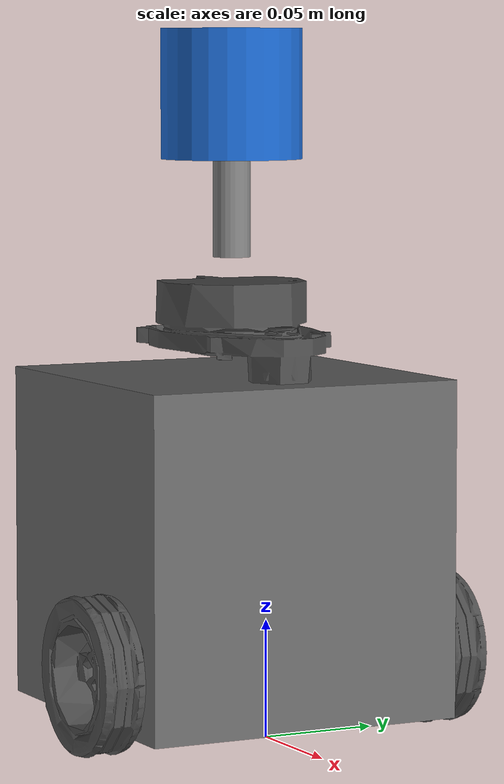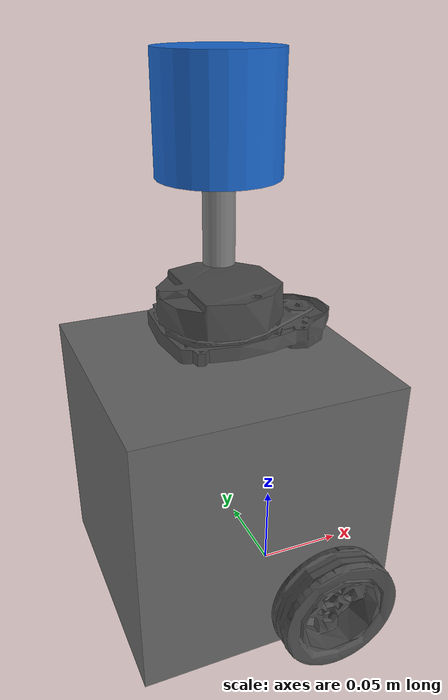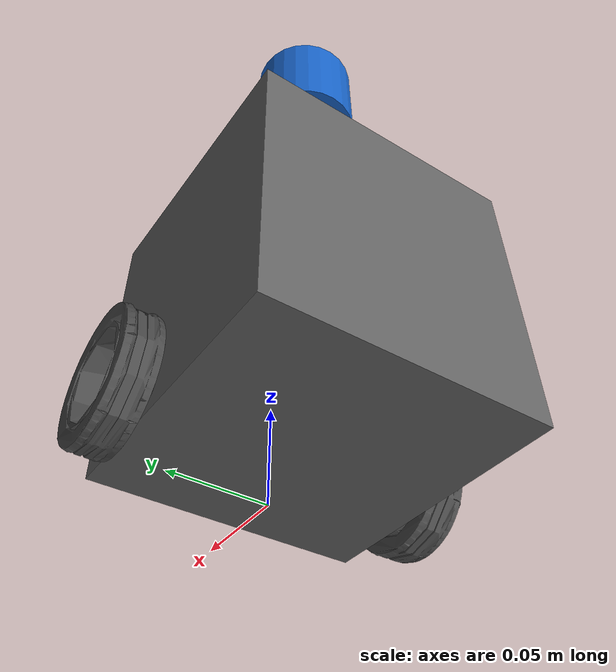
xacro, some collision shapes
<?xml version="1.0"?>
<robot name="turtlebot3_burger" xmlns:xacro="http://www.ros.org/wiki/xacro">
  <!-- Week 2 sensor model (week2-slam/wanjun/models) plus a simulator-only ground-truth pose.
       Official Burger geometry/inertias/TF from the installed Apache-2.0 package. -->
  <xacro:include filename="$(find turtlebot3_description)/urdf/turtlebot3_burger.urdf"/>

  <!-- Additional generic 16-channel LiDAR, above the original 2D LDS. -->
  <joint name="lidar_3d_joint" type="fixed">
    <parent link="base_link"/>
    <child link="lidar_3d_link"/>
    <origin xyz="-0.032 0 0.26" rpy="0 0 0"/>
  </joint>
  <link name="lidar_3d_link">
    <inertial>
      <mass value="0.10"/>
      <inertia ixx="0.00005" ixy="0" ixz="0" iyy="0.00005" iyz="0" izz="0.000045"/>
    </inertial>
    <visual>
      <geometry><cylinder radius="0.03" length="0.055"/></geometry>
      <material name="lidar_blue"><color rgba="0.1 0.4 0.8 1"/></material>
    </visual>
    <collision>
      <geometry><cylinder radius="0.03" length="0.055"/></geometry>
    </collision>
  </link>
  <!-- A narrow mast leaves the original 2D scanning plane unobstructed. -->
  <joint name="lidar_mount_joint" type="fixed">
    <parent link="base_link"/>
    <child link="lidar_mount_link"/>
    <origin xyz="-0.032 0 0.212" rpy="0 0 0"/>
  </joint>
  <link name="lidar_mount_link">
    <inertial>
      <mass value="0.02"/>
      <inertia ixx="0.000004" ixy="0" ixz="0" iyy="0.000004" iyz="0" izz="0.000001"/>
    </inertial>
    <visual>
      <geometry><cylinder radius="0.008" length="0.042"/></geometry>
      <material name="grey"/>
    </visual>
    <collision>
      <geometry><cylinder radius="0.008" length="0.042"/></geometry>
    </collision>
  </link>

  <!-- The converter moves sensors with fixed joints into the parent link.
       gz_frame_id keeps ROS messages in the original URDF sensor frame. -->
  <gazebo reference="base_scan">
    <sensor name="burger_2d_lidar" type="gpu_lidar">
      <always_on>true</always_on>
      <update_rate>5</update_rate>
      <topic>/scan</topic>
      <gz_frame_id>base_scan</gz_frame_id>
      <lidar>
        <scan>
          <horizontal>
            <samples>360</samples><resolution>1</resolution>
            <min_angle>0</min_angle><max_angle>6.265732014659643</max_angle>
          </horizontal>
        </scan>
        <range><min>0.12</min><max>3.5</max><resolution>0.015</resolution></range>
        <noise><type>gaussian</type><mean>0</mean><stddev>0.01</stddev></noise>
      </lidar>
    </sensor>
  </gazebo>
  <!-- Gazebo renders one whole scan at a single simulation time (no rotation during a scan).
       Rays without a return are published as non-finite points; see tools/points_to_fastlio.py. -->
  <gazebo reference="lidar_3d_link">
    <sensor name="burger_3d_lidar" type="gpu_lidar">
      <always_on>true</always_on>
      <update_rate>10</update_rate>
      <topic>/lidar_3d</topic>
      <gz_frame_id>lidar_3d_link</gz_frame_id>
      <lidar>
        <scan>
          <horizontal>
            <samples>720</samples><resolution>1</resolution>
            <min_angle>-3.141592653589793</min_angle><max_angle>3.132866007329822</max_angle>
          </horizontal>
          <vertical>
            <samples>16</samples><resolution>1</resolution>
            <min_angle>-0.2617993877991494</min_angle><max_angle>0.2617993877991494</max_angle>
          </vertical>
        </scan>
        <range><min>0.10</min><max>20</max><resolution>0.01</resolution></range>
        <noise><type>gaussian</type><mean>0</mean><stddev>0.01</stddev></noise>
      </lidar>
    </sensor>
  </gazebo>

  <xacro:macro name="imu_noise" params="stddev">
    <x><noise type="gaussian"><mean>0</mean><stddev>${stddev}</stddev></noise></x>
    <y><noise type="gaussian"><mean>0</mean><stddev>${stddev}</stddev></noise></y>
    <z><noise type="gaussian"><mean>0</mean><stddev>${stddev}</stddev></noise></z>
  </xacro:macro>
  <gazebo reference="imu_link">
    <sensor name="burger_imu" type="imu">
      <always_on>true</always_on>
      <update_rate>200</update_rate>
      <topic>/imu</topic>
      <gz_frame_id>imu_link</gz_frame_id>
      <imu>
        <angular_velocity><xacro:imu_noise stddev="0.0002"/></angular_velocity>
        <linear_acceleration><xacro:imu_noise stddev="0.017"/></linear_acceleration>
      </imu>
    </sensor>
  </gazebo>

  <gazebo reference="wheel_left_link"><mu1>1.0</mu1><mu2>1.0</mu2></gazebo>
  <gazebo reference="wheel_right_link"><mu1>1.0</mu1><mu2>1.0</mu2></gazebo>
  <gazebo reference="caster_back_link"><mu1>0.0</mu1><mu2>0.0</mu2></gazebo>
  <gazebo>
    <plugin filename="gz-sim-diff-drive-system" name="gz::sim::systems::DiffDrive">
      <left_joint>wheel_left_joint</left_joint><right_joint>wheel_right_joint</right_joint>
      <wheel_separation>0.16</wheel_separation><wheel_radius>0.033</wheel_radius>
      <max_linear_velocity>0.22</max_linear_velocity><min_linear_velocity>-0.22</min_linear_velocity>
      <max_angular_velocity>2.0</max_angular_velocity><min_angular_velocity>-2.0</min_angular_velocity>
      <max_linear_acceleration>0.5</max_linear_acceleration><min_linear_acceleration>-0.5</min_linear_acceleration>
      <max_angular_acceleration>2.0</max_angular_acceleration><min_angular_acceleration>-2.0</min_angular_acceleration>
      <topic>/cmd_vel</topic><odom_topic>/odom</odom_topic><tf_topic>/tf</tf_topic>
      <frame_id>odom</frame_id><child_frame_id>base_footprint</child_frame_id>
      <odom_publish_frequency>30</odom_publish_frequency>
    </plugin>
    <plugin filename="gz-sim-joint-state-publisher-system" name="gz::sim::systems::JointStatePublisher">
      <joint_name>wheel_left_joint</joint_name><joint_name>wheel_right_joint</joint_name>
      <topic>/joint_states</topic>
    </plugin>
    <plugin filename="gz-sim-odometry-publisher-system" name="gz::sim::systems::OdometryPublisher">
      <odom_frame>world</odom_frame>
      <robot_base_frame>base_footprint</robot_base_frame>
      <odom_topic>/ground_truth/odom</odom_topic>
      <tf_topic>/ground_truth/tf</tf_topic>
      <dimensions>3</dimensions>
      <odom_publish_frequency>50</odom_publish_frequency>
    </plugin>
  </gazebo>
</robot>

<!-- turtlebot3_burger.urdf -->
<!-- |    This document was autogenerated by xacro from /tmp/claude-0/-home-claude/8f5dd28e-fe63-5f45-8f7e-d1a0395364a9/scratchpad/repos/tb3/turtlebot3_description/urdf/turtlebot3_burger.urdf | -->
<!-- |    EDITING THIS FILE BY HAND IS NOT RECOMMENDED                                 | -->
<robot name="turtlebot3_burger">
  <!-- Init colour -->
  <material name="black">
    <color rgba="0.0 0.0 0.0 1.0"/>
  </material>
  <material name="dark">
    <color rgba="0.3 0.3 0.3 1.0"/>
  </material>
  <material name="light_black">
    <color rgba="0.4 0.4 0.4 1.0"/>
  </material>
  <material name="blue">
    <color rgba="0.0 0.0 0.8 1.0"/>
  </material>
  <material name="green">
    <color rgba="0.0 0.8 0.0 1.0"/>
  </material>
  <material name="grey">
    <color rgba="0.5 0.5 0.5 1.0"/>
  </material>
  <material name="orange">
    <color rgba="1.0 0.4235 0.0392 1.0"/>
  </material>
  <material name="brown">
    <color rgba="0.8706 0.8118 0.7647 1.0"/>
  </material>
  <material name="red">
    <color rgba="0.8 0.0 0.0 1.0"/>
  </material>
  <material name="white">
    <color rgba="1.0 1.0 1.0 1.0"/>
  </material>
  <link name="base_footprint"/>
  <joint name="base_joint" type="fixed">
    <parent link="base_footprint"/>
    <child link="base_link"/>
    <origin rpy="0 0 0" xyz="0.0 0.0 0.010"/>
  </joint>
  <link name="base_link">
    <visual>
      <origin rpy="0 0 0" xyz="-0.032 0 0.0"/>
      <geometry>
        <mesh filename="package://turtlebot3_description/meshes/bases/burger_base.stl" scale="0.001 0.001 0.001"/>
      </geometry>
      <material name="light_black"/>
    </visual>
    <collision>
      <origin rpy="0 0 0" xyz="-0.032 0 0.070"/>
      <geometry>
        <box size="0.140 0.140 0.143"/>
      </geometry>
    </collision>
    <inertial>
      <origin rpy="0 0 0" xyz="0 0 0"/>
      <mass value="8.2573504e-01"/>
      <inertia ixx="2.2124416e-03" ixy="-1.2294101e-05" ixz="3.4938785e-05" iyy="2.1193702e-03" iyz="-5.0120904e-06" izz="2.0064271e-03"/>
    </inertial>
  </link>
  <joint name="wheel_left_joint" type="continuous">
    <parent link="base_link"/>
    <child link="wheel_left_link"/>
    <origin rpy="-1.57 0 0" xyz="0.0 0.08 0.023"/>
    <axis xyz="0 0 1"/>
  </joint>
  <link name="wheel_left_link">
    <visual>
      <origin rpy="1.57 0 0" xyz="0 0 0"/>
      <geometry>
        <mesh filename="package://turtlebot3_description/meshes/wheels/left_tire.stl" scale="0.001 0.001 0.001"/>
      </geometry>
      <material name="dark"/>
    </visual>
    <collision>
      <origin rpy="0 0 0" xyz="0 0 0"/>
      <geometry>
        <cylinder length="0.018" radius="0.033"/>
      </geometry>
    </collision>
    <inertial>
      <origin xyz="0 0 0"/>
      <mass value="2.8498940e-02"/>
      <inertia ixx="1.1175580e-05" ixy="-4.2369783e-11" ixz="-5.9381719e-09" iyy="1.1192413e-05" iyz="-1.4400107e-11" izz="2.0712558e-05"/>
    </inertial>
  </link>
  <joint name="wheel_right_joint" type="continuous">
    <parent link="base_link"/>
    <child link="wheel_right_link"/>
    <origin rpy="-1.57 0 0" xyz="0.0 -0.080 0.023"/>
    <axis xyz="0 0 1"/>
  </joint>
  <link name="wheel_right_link">
    <visual>
      <origin rpy="1.57 0 0" xyz="0 0 0"/>
      <geometry>
        <mesh filename="package://turtlebot3_description/meshes/wheels/right_tire.stl" scale="0.001 0.001 0.001"/>
      </geometry>
      <material name="dark"/>
    </visual>
    <collision>
      <origin rpy="0 0 0" xyz="0 0 0"/>
      <geometry>
        <cylinder length="0.018" radius="0.033"/>
      </geometry>
    </collision>
    <inertial>
      <origin xyz="0 0 0"/>
      <mass value="2.8498940e-02"/>
      <inertia ixx="1.1175580e-05" ixy="-4.2369783e-11" ixz="-5.9381719e-09" iyy="1.1192413e-05" iyz="-1.4400107e-11" izz="2.0712558e-05"/>
    </inertial>
  </link>
  <joint name="caster_back_joint" type="fixed">
    <parent link="base_link"/>
    <child link="caster_back_link"/>
    <origin rpy="-1.57 0 0" xyz="-0.081 0 -0.004"/>
  </joint>
  <link name="caster_back_link">
    <collision>
      <origin rpy="0 0 0" xyz="0 0.001 0"/>
      <geometry>
        <box size="0.030 0.009 0.020"/>
      </geometry>
    </collision>
    <inertial>
      <origin xyz="0 0 0"/>
      <mass value="0.005"/>
      <inertia ixx="0.001" ixy="0.0" ixz="0.0" iyy="0.001" iyz="0.0" izz="0.001"/>
    </inertial>
  </link>
  <joint name="imu_joint" type="fixed">
    <parent link="base_link"/>
    <child link="imu_link"/>
    <origin rpy="0 0 0" xyz="-0.032 0 0.068"/>
  </joint>
  <link name="imu_link"/>
  <joint name="scan_joint" type="fixed">
    <parent link="base_link"/>
    <child link="base_scan"/>
    <origin rpy="0 0 0" xyz="-0.032 0 0.172"/>
  </joint>
  <link name="base_scan">
    <visual>
      <origin rpy="0 0 0" xyz="0 0 0.0"/>
      <geometry>
        <mesh filename="package://turtlebot3_description/meshes/sensors/lds.stl" scale="0.001 0.001 0.001"/>
      </geometry>
      <material name="dark"/>
    </visual>
    <collision>
      <origin rpy="0 0 0" xyz="0.015 0 -0.0065"/>
      <geometry>
        <cylinder length="0.0315" radius="0.055"/>
      </geometry>
    </collision>
    <inertial>
      <mass value="0.114"/>
      <origin xyz="0 0 0"/>
      <inertia ixx="0.001" ixy="0.0" ixz="0.0" iyy="0.001" iyz="0.0" izz="0.001"/>
    </inertial>
  </link>
</robot>
